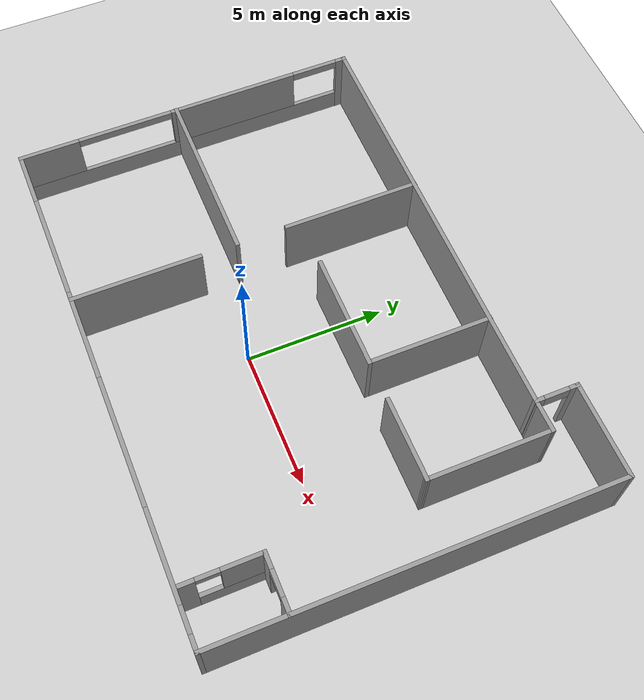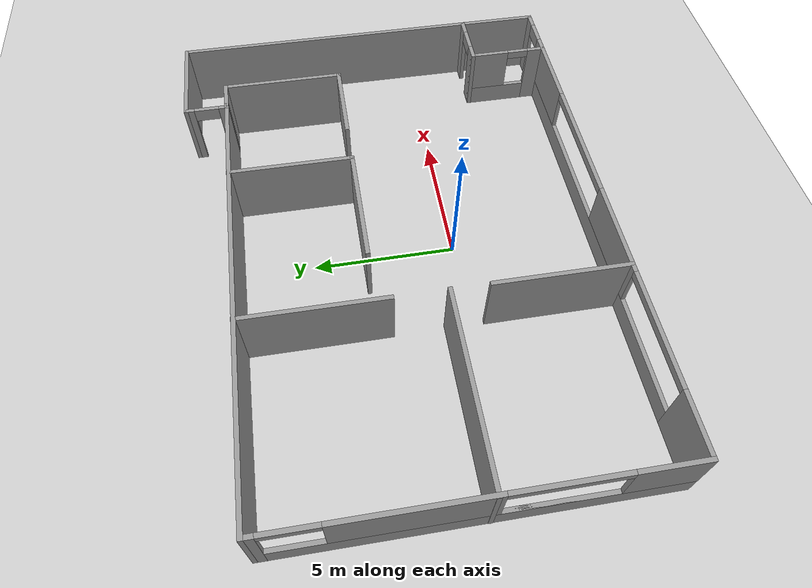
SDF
<sdf version="1.7">
 <world name="default">
  <light name="sun" type="directional">
   <pose>0 0 10 0 -0 0</pose>
   <diffuse>0.8 0.8 0.8 1</diffuse>
   <specular>0.2 0.2 0.2 1</specular>
   <attenuation>
    <range>1000</range>
    <constant>0.9</constant>
    <linear>0.01</linear>
    <quadratic>0.001</quadratic>
   </attenuation>
   <direction>-0.5 0.1 -0.9</direction>
   <spot><inner_angle>0</inner_angle><outer_angle>0</outer_angle><falloff>0</falloff></spot>
  </light>
  <model name="ground_plane">
   <static>1</static>
   <link name="link">
    <collision name="collision">
     <geometry><plane><normal>0 0 1</normal><size>100 100</size></plane></geometry>
     <surface>
      <contact><collide_bitmask>65535</collide_bitmask></contact>
      <friction><ode><mu>100</mu><mu2>50</mu2></ode></friction>
     </surface>
    </collision>
    <visual name="visual">
     <cast_shadows>0</cast_shadows>
     <geometry><plane><normal>0 0 1</normal><size>100 100</size></plane></geometry>
     <material>
      <script><uri>file://media/materials/scripts/gazebo.material</uri><name>Gazebo/Grey</name></script>
     </material>
    </visual>
   </link>
  </model>
  <model name="TrossenRoboticsOfficeBuilding">
   <pose>0 2 0 0 -0 0</pose>
   <link name="Wall_0">
    <pose>-9.41899 -0.749926 0 0 -0 -1.5708</pose>
    <visual name="Wall_0_Visual_0">
     <pose>-6.1662 0 1.25 0 -0 0</pose>
     <geometry><box><size>0.417592 0.15 2.5</size></box></geometry>
     <material>
      <script><uri>file://media/materials/scripts/gazebo.material</uri><name>Gazebo/Grey</name></script>
      <ambient>1 1 1 1</ambient>
     </material>
     <meta><layer>0</layer></meta>
    </visual>
    <collision name="Wall_0_Collision_0">
     <geometry><box><size>0.417592 0.15 2.5</size></box></geometry>
     <pose>-6.1662 0 1.25 0 -0 0</pose>
    </collision>
    <visual name="Wall_0_Visual_1">
     <pose>0.208796 0 0.4 0 -0 0</pose>
     <geometry><box><size>12.3324 0.15 0.8</size></box></geometry>
     <material>
      <script><uri>file://media/materials/scripts/gazebo.material</uri><name>Gazebo/Grey</name></script>
      <ambient>1 1 1 1</ambient>
     </material>
     <meta><layer>0</layer></meta>
    </visual>
    <collision name="Wall_0_Collision_1">
     <geometry><box><size>12.3324 0.15 0.8</size></box></geometry>
     <pose>0.208796 0 0.4 0 -0 0</pose>
    </collision>
    <visual name="Wall_0_Visual_2">
     <pose>-1.80949 0 1.65 0 -0 0</pose>
     <geometry><box><size>4.84784 0.15 1.7</size></box></geometry>
     <material>
      <script><uri>file://media/materials/scripts/gazebo.material</uri><name>Gazebo/Grey</name></script>
      <ambient>1 1 1 1</ambient>
     </material>
     <meta><layer>0</layer></meta>
    </visual>
    <collision name="Wall_0_Collision_2">
     <geometry><box><size>4.84784 0.15 1.7</size></box></geometry>
     <pose>-1.80949 0 1.65 0 -0 0</pose>
    </collision>
    <visual name="Wall_0_Visual_3">
     <pose>5.25622 0 1.65 0 -0 0</pose>
     <geometry><box><size>2.23757 0.15 1.7</size></box></geometry>
     <material>
      <script><uri>file://media/materials/scripts/gazebo.material</uri><name>Gazebo/Grey</name></script>
      <ambient>1 1 1 1</ambient>
     </material>
     <meta><layer>0</layer></meta>
    </visual>
    <collision name="Wall_0_Collision_3">
     <geometry><box><size>2.23757 0.15 1.7</size></box></geometry>
     <pose>5.25622 0 1.65 0 -0 0</pose>
    </collision>
    <visual name="Wall_0_Visual_4">
     <pose>2.37593 0 0.8 0 -0 0</pose>
     <geometry><box><size>3.523 0.15 0</size></box></geometry>
     <material>
      <script><uri>file://media/materials/scripts/gazebo.material</uri><name>Gazebo/Grey</name></script>
      <ambient>1 1 1 1</ambient>
     </material>
     <meta><layer>0</layer></meta>
    </visual>
    <collision name="Wall_0_Collision_4">
     <geometry><box><size>3.523 0.15 0</size></box></geometry>
     <pose>2.37593 0 0.8 0 -0 0</pose>
    </collision>
    <visual name="Wall_0_Visual_5">
     <pose>-5.09541 0 2.35 0 -0 0</pose>
     <geometry><box><size>1.724 0.15 0.3</size></box></geometry>
     <material>
      <script><uri>file://media/materials/scripts/gazebo.material</uri><name>Gazebo/Grey</name></script>
      <ambient>1 1 1 1</ambient>
     </material>
     <meta><layer>0</layer></meta>
    </visual>
    <collision name="Wall_0_Collision_5">
     <geometry><box><size>1.724 0.15 0.3</size></box></geometry>
     <pose>-5.09541 0 2.35 0 -0 0</pose>
    </collision>
    <visual name="Wall_0_Visual_6">
     <pose>2.37593 0 2.35 0 -0 0</pose>
     <geometry><box><size>3.523 0.15 0.3</size></box></geometry>
     <material>
      <script><uri>file://media/materials/scripts/gazebo.material</uri><name>Gazebo/Grey</name></script>
      <ambient>1 1 1 1</ambient>
     </material>
     <meta><layer>0</layer></meta>
    </visual>
    <collision name="Wall_0_Collision_6">
     <geometry><box><size>3.523 0.15 0.3</size></box></geometry>
     <pose>2.37593 0 2.35 0 -0 0</pose>
    </collision>
   </link>
   <link name="Wall_1">
    <pose>0.006011 -7.04993 0 0 -0 0</pose>
    <visual name="Wall_1_Visual_0">
     <pose>-8.45251 0 1.25 0 -0 0</pose>
     <geometry><box><size>2.09499 0.15 2.5</size></box></geometry>
     <material>
      <script><uri>file://media/materials/scripts/gazebo.material</uri><name>Gazebo/Grey</name></script>
      <ambient>1 1 1 1</ambient>
     </material>
     <meta><layer>0</layer></meta>
    </visual>
    <collision name="Wall_1_Collision_0">
     <geometry><box><size>2.09499 0.15 2.5</size></box></geometry>
     <pose>-8.45251 0 1.25 0 -0 0</pose>
    </collision>
    <visual name="Wall_1_Visual_1">
     <pose>9.18754 0 1.25 0 -0 0</pose>
     <geometry><box><size>0.624916 0.15 2.5</size></box></geometry>
     <material>
      <script><uri>file://media/materials/scripts/gazebo.material</uri><name>Gazebo/Grey</name></script>
      <ambient>1 1 1 1</ambient>
     </material>
     <meta><layer>0</layer></meta>
    </visual>
    <collision name="Wall_1_Collision_1">
     <geometry><box><size>0.624916 0.15 2.5</size></box></geometry>
     <pose>9.18754 0 1.25 0 -0 0</pose>
    </collision>
    <visual name="Wall_1_Visual_2">
     <pose>0.285035 0 0.4 0 -0 0</pose>
     <geometry><box><size>15.3801 0.15 0.8</size></box></geometry>
     <material>
      <script><uri>file://media/materials/scripts/gazebo.material</uri><name>Gazebo/Grey</name></script>
      <ambient>1 1 1 1</ambient>
     </material>
     <meta><layer>0</layer></meta>
    </visual>
    <collision name="Wall_1_Collision_2">
     <geometry><box><size>15.3801 0.15 0.8</size></box></geometry>
     <pose>0.285035 0 0.4 0 -0 0</pose>
    </collision>
    <visual name="Wall_1_Visual_3">
     <pose>-1.67035 0 1.65 0 -0 0</pose>
     <geometry><box><size>3.42869 0.15 1.7</size></box></geometry>
     <material>
      <script><uri>file://media/materials/scripts/gazebo.material</uri><name>Gazebo/Grey</name></script>
      <ambient>1 1 1 1</ambient>
     </material>
     <meta><layer>0</layer></meta>
    </visual>
    <collision name="Wall_1_Collision_3">
     <geometry><box><size>3.42869 0.15 1.7</size></box></geometry>
     <pose>-1.67035 0 1.65 0 -0 0</pose>
    </collision>
    <visual name="Wall_1_Visual_4">
     <pose>6.36821 0 1.65 0 -0 0</pose>
     <geometry><box><size>3.21375 0.15 1.7</size></box></geometry>
     <material>
      <script><uri>file://media/materials/scripts/gazebo.material</uri><name>Gazebo/Grey</name></script>
      <ambient>1 1 1 1</ambient>
     </material>
     <meta><layer>0</layer></meta>
    </visual>
    <collision name="Wall_1_Collision_4">
     <geometry><box><size>3.21375 0.15 1.7</size></box></geometry>
     <pose>6.36821 0 1.65 0 -0 0</pose>
    </collision>
    <visual name="Wall_1_Visual_5">
     <pose>8.42508 0 2.25 0 -0 0</pose>
     <geometry><box><size>0.9 0.15 0.5</size></box></geometry>
     <material>
      <script><uri>file://media/materials/scripts/gazebo.material</uri><name>Gazebo/Grey</name></script>
      <ambient>1 1 1 1</ambient>
     </material>
     <meta><layer>0</layer></meta>
    </visual>
    <collision name="Wall_1_Collision_5">
     <geometry><box><size>0.9 0.15 0.5</size></box></geometry>
     <pose>8.42508 0 2.25 0 -0 0</pose>
    </collision>
    <visual name="Wall_1_Visual_6">
     <pose>-5.39486 0 2.35 0 -0 0</pose>
     <geometry><box><size>4.02031 0.15 0.3</size></box></geometry>
     <material>
      <script><uri>file://media/materials/scripts/gazebo.material</uri><name>Gazebo/Grey</name></script>
      <ambient>1 1 1 1</ambient>
     </material>
     <meta><layer>0</layer></meta>
    </visual>
    <collision name="Wall_1_Collision_6">
     <geometry><box><size>4.02031 0.15 0.3</size></box></geometry>
     <pose>-5.39486 0 2.35 0 -0 0</pose>
    </collision>
    <visual name="Wall_1_Visual_7">
     <pose>2.40266 0 2.35 0 -0 0</pose>
     <geometry><box><size>4.71734 0.15 0.3</size></box></geometry>
     <material>
      <script><uri>file://media/materials/scripts/gazebo.material</uri><name>Gazebo/Grey</name></script>
      <ambient>1 1 1 1</ambient>
     </material>
     <meta><layer>0</layer></meta>
    </visual>
    <collision name="Wall_1_Collision_7">
     <geometry><box><size>4.71734 0.15 0.3</size></box></geometry>
     <pose>2.40266 0 2.35 0 -0 0</pose>
    </collision>
   </link>
   <link name="Wall_10">
    <collision name="Wall_10_Collision">
     <geometry><box><size>6.5 0.15 2.5</size></box></geometry>
     <pose>0 0 1.25 0 -0 0</pose>
    </collision>
    <visual name="Wall_10_Visual">
     <pose>0 0 1.25 0 -0 0</pose>
     <geometry><box><size>6.5 0.15 2.5</size></box></geometry>
     <material>
      <script><uri>file://media/materials/scripts/gazebo.material</uri><name>Gazebo/Grey</name></script>
      <ambient>1 1 1 1</ambient>
     </material>
     <meta><layer>0</layer></meta>
    </visual>
    <pose>-6.2561 -1.14107 0 0 -0 0</pose>
   </link>
   <link name="Wall_15">
    <collision name="Wall_15_Collision">
     <geometry><box><size>4.709 0.15 2.5</size></box></geometry>
     <pose>0 0 1.25 0 -0 0</pose>
    </collision>
    <visual name="Wall_15_Visual">
     <pose>0 0 1.25 0 -0 0</pose>
     <geometry><box><size>4.709 0.15 2.5</size></box></geometry>
     <material>
      <script><uri>file://media/materials/scripts/gazebo.material</uri><name>Gazebo/Grey</name></script>
      <ambient>1 1 1 1</ambient>
     </material>
     <meta><layer>0</layer></meta>
    </visual>
    <pose>-3.08091 -4.77053 0 0 -0 -1.5708</pose>
   </link>
   <link name="Wall_18">
    <collision name="Wall_18_Collision">
     <geometry><box><size>5 0.15 2.5</size></box></geometry>
     <pose>0 0 1.25 0 -0 0</pose>
    </collision>
    <visual name="Wall_18_Visual">
     <pose>0 0 1.25 0 -0 0</pose>
     <geometry><box><size>5 0.15 2.5</size></box></geometry>
     <material>
      <script><uri>file://media/materials/scripts/gazebo.material</uri><name>Gazebo/Grey</name></script>
      <ambient>1 1 1 1</ambient>
     </material>
     <meta><layer>0</layer></meta>
    </visual>
    <pose>-3.0811 3.13393 0 0 -0 1.5708</pose>
   </link>
   <link name="Wall_2">
    <collision name="Wall_2_Collision">
     <geometry><box><size>14.25 0.15 2.5</size></box></geometry>
     <pose>0 0 1.25 0 -0 0</pose>
    </collision>
    <visual name="Wall_2_Visual">
     <pose>0 0 1.25 0 -0 0</pose>
     <geometry><box><size>14.25 0.15 2.5</size></box></geometry>
     <material>
      <script><uri>file://media/materials/scripts/gazebo.material</uri><name>Gazebo/Grey</name></script>
      <ambient>1 1 1 1</ambient>
     </material>
     <meta><layer>0</layer></meta>
    </visual>
    <pose>9.43105 2.5e-05 0 0 -0 1.57079</pose>
   </link>
   <link name="Wall_20">
    <collision name="Wall_20_Collision">
     <geometry><box><size>4.5 0.15 2.5</size></box></geometry>
     <pose>0 0 1.25 0 -0 0</pose>
    </collision>
    <visual name="Wall_20_Visual">
     <pose>0 0 1.25 0 -0 0</pose>
     <geometry><box><size>4.5 0.15 2.5</size></box></geometry>
     <material>
      <script><uri>file://media/materials/scripts/gazebo.material</uri><name>Gazebo/Grey</name></script>
      <ambient>1 1 1 1</ambient>
     </material>
     <meta><layer>0</layer></meta>
    </visual>
    <pose>2.81816 3.38641 0 0 -0 -1.5708</pose>
   </link>
   <link name="Wall_21">
    <collision name="Wall_21_Collision">
     <geometry><box><size>4.25 0.15 2.5</size></box></geometry>
     <pose>0 0 1.25 0 -0 0</pose>
    </collision>
    <visual name="Wall_21_Visual">
     <pose>0 0 1.25 0 -0 0</pose>
     <geometry><box><size>4.25 0.15 2.5</size></box></geometry>
     <material>
      <script><uri>file://media/materials/scripts/gazebo.material</uri><name>Gazebo/Grey</name></script>
      <ambient>1 1 1 1</ambient>
     </material>
     <meta><layer>0</layer></meta>
    </visual>
    <pose>0.768162 1.21141 0 0 -0 3.14159</pose>
   </link>
   <link name="Wall_24">
    <collision name="Wall_24_Collision">
     <geometry><box><size>4.5 0.15 2.5</size></box></geometry>
     <pose>0 0 1.25 0 -0 0</pose>
    </collision>
    <visual name="Wall_24_Visual">
     <pose>0 0 1.25 0 -0 0</pose>
     <geometry><box><size>4.5 0.15 2.5</size></box></geometry>
     <material>
      <script><uri>file://media/materials/scripts/gazebo.material</uri><name>Gazebo/Grey</name></script>
      <ambient>1 1 1 1</ambient>
     </material>
     <meta><layer>0</layer></meta>
    </visual>
    <pose>7.16816 3.38641 0 0 -0 1.5708</pose>
   </link>
   <link name="Wall_25">
    <collision name="Wall_25_Collision">
     <geometry><box><size>1.13722 0.15 2.5</size></box></geometry>
     <pose>0 0 1.25 0 -0 0</pose>
    </collision>
    <visual name="Wall_25_Visual">
     <pose>0 0 1.25 0 -0 0</pose>
     <geometry><box><size>1.13722 0.15 2.5</size></box></geometry>
     <material>
      <script><uri>file://media/materials/scripts/gazebo.material</uri><name>Gazebo/Grey</name></script>
      <ambient>1 1 1 1</ambient>
     </material>
     <meta><layer>0</layer></meta>
    </visual>
    <pose>6.67459 5.55574 0 0 -0 -3.13011</pose>
   </link>
   <link name="Wall_27">
    <collision name="Wall_27_Collision">
     <geometry><box><size>3.04868 0.15 2.5</size></box></geometry>
     <pose>0 0 1.25 0 -0 0</pose>
    </collision>
    <visual name="Wall_27_Visual">
     <pose>0 0 1.25 0 -0 0</pose>
     <geometry><box><size>3.04868 0.15 2.5</size></box></geometry>
     <material>
      <script><uri>file://media/materials/scripts/gazebo.material</uri><name>Gazebo/Grey</name></script>
      <ambient>1 1 1 1</ambient>
     </material>
     <meta><layer>0</layer></meta>
    </visual>
    <pose>5.71882 1.21452 0 0 -0 -0.002145</pose>
   </link>
   <link name="Wall_3">
    <collision name="Wall_3_Collision">
     <geometry><box><size>3.5 0.15 2.5</size></box></geometry>
     <pose>0 0 1.25 0 -0 0</pose>
    </collision>
    <visual name="Wall_3_Visual">
     <pose>0 0 1.25 0 -0 0</pose>
     <geometry><box><size>3.5 0.15 2.5</size></box></geometry>
     <material>
      <script><uri>file://media/materials/scripts/gazebo.material</uri><name>Gazebo/Grey</name></script>
      <ambient>1 1 1 1</ambient>
     </material>
     <meta><layer>0</layer></meta>
    </visual>
    <pose>7.7561 7.04997 0 0 -0 3.14159</pose>
   </link>
   <link name="Wall_31">
    <pose>6.0811 6.29948 0 0 -0 -1.5708</pose>
    <visual name="Wall_31_Visual_0">
     <pose>-0.636014 0 1.25 0 -0 0</pose>
     <geometry><box><size>0.378971 0.15 2.5</size></box></geometry>
     <material>
      <script><uri>file://media/materials/scripts/gazebo.material</uri><name>Gazebo/Grey</name></script>
      <ambient>1 1 1 1</ambient>
     </material>
     <meta><layer>0</layer></meta>
    </visual>
    <collision name="Wall_31_Collision_0">
     <geometry><box><size>0.378971 0.15 2.5</size></box></geometry>
     <pose>-0.636014 0 1.25 0 -0 0</pose>
    </collision>
    <visual name="Wall_31_Visual_1">
     <pose>0.639486 0 1.25 0 -0 0</pose>
     <geometry><box><size>0.372029 0.15 2.5</size></box></geometry>
     <material>
      <script><uri>file://media/materials/scripts/gazebo.material</uri><name>Gazebo/Grey</name></script>
      <ambient>1 1 1 1</ambient>
     </material>
     <meta><layer>0</layer></meta>
    </visual>
    <collision name="Wall_31_Collision_1">
     <geometry><box><size>0.372029 0.15 2.5</size></box></geometry>
     <pose>0.639486 0 1.25 0 -0 0</pose>
    </collision>
    <visual name="Wall_31_Visual_2">
     <pose>0.003471 0 2.25 0 -0 0</pose>
     <geometry><box><size>0.9 0.15 0.5</size></box></geometry>
     <material>
      <script><uri>file://media/materials/scripts/gazebo.material</uri><name>Gazebo/Grey</name></script>
      <ambient>1 1 1 1</ambient>
     </material>
     <meta><layer>0</layer></meta>
    </visual>
    <collision name="Wall_31_Collision_2">
     <geometry><box><size>0.9 0.15 0.5</size></box></geometry>
     <pose>0.003471 0 2.25 0 -0 0</pose>
    </collision>
   </link>
   <link name="Wall_33">
    <pose>8.43109 -4.20702 0 0 -0 0</pose>
    <visual name="Wall_33_Visual_0">
     <pose>-0.761405 0 1.25 0 -0 0</pose>
     <geometry><box><size>0.62319 0.15 2.5</size></box></geometry>
     <material>
      <script><uri>file://media/materials/scripts/gazebo.material</uri><name>Gazebo/Grey</name></script>
      <ambient>1 1 1 1</ambient>
     </material>
     <meta><layer>0</layer></meta>
    </visual>
    <collision name="Wall_33_Collision_0">
     <geometry><box><size>0.62319 0.15 2.5</size></box></geometry>
     <pose>-0.761405 0 1.25 0 -0 0</pose>
    </collision>
    <visual name="Wall_33_Visual_1">
     <pose>0.761595 0 1.25 0 -0 0</pose>
     <geometry><box><size>0.62281 0.15 2.5</size></box></geometry>
     <material>
      <script><uri>file://media/materials/scripts/gazebo.material</uri><name>Gazebo/Grey</name></script>
      <ambient>1 1 1 1</ambient>
     </material>
     <meta><layer>0</layer></meta>
    </visual>
    <collision name="Wall_33_Collision_1">
     <geometry><box><size>0.62281 0.15 2.5</size></box></geometry>
     <pose>0.761595 0 1.25 0 -0 0</pose>
    </collision>
    <visual name="Wall_33_Visual_2">
     <pose>0.00019 0 2.25 0 -0 0</pose>
     <geometry><box><size>0.9 0.15 0.5</size></box></geometry>
     <material>
      <script><uri>file://media/materials/scripts/gazebo.material</uri><name>Gazebo/Grey</name></script>
      <ambient>1 1 1 1</ambient>
     </material>
     <meta><layer>0</layer></meta>
    </visual>
    <collision name="Wall_33_Collision_2">
     <geometry><box><size>0.9 0.15 0.5</size></box></geometry>
     <pose>0.00019 0 2.25 0 -0 0</pose>
    </collision>
   </link>
   <link name="Wall_6">
    <collision name="Wall_6_Collision">
     <geometry><box><size>15.75 0.15 2.5</size></box></geometry>
     <pose>0 0 1.25 0 -0 0</pose>
    </collision>
    <visual name="Wall_6_Visual">
     <pose>0 0 1.25 0 -0 0</pose>
     <geometry><box><size>15.75 0.15 2.5</size></box></geometry>
     <material>
      <script><uri>file://media/materials/scripts/gazebo.material</uri><name>Gazebo/Grey</name></script>
      <ambient>1 1 1 1</ambient>
     </material>
     <meta><layer>0</layer></meta>
    </visual>
    <pose>-1.61899 5.55007 0 0 -0 0</pose>
   </link>
   <link name="Wall_8">
    <pose>7.43326 -5.62667 0 0 -0 1.57091</pose>
    <visual name="Wall_8_Visual_0">
     <pose>-1.14327 0 1.25 0 -0 0</pose>
     <geometry><box><size>0.702754 0.15 2.5</size></box></geometry>
     <material>
      <script><uri>file://media/materials/scripts/gazebo.material</uri><name>Gazebo/Grey</name></script>
      <ambient>1 1 1 1</ambient>
     </material>
     <meta><layer>0</layer></meta>
    </visual>
    <collision name="Wall_8_Collision_0">
     <geometry><box><size>0.702754 0.15 2.5</size></box></geometry>
     <pose>-1.14327 0 1.25 0 -0 0</pose>
    </collision>
    <visual name="Wall_8_Visual_1">
     <pose>0.351377 0 0.4 0 -0 0</pose>
     <geometry><box><size>2.28653 0.15 0.8</size></box></geometry>
     <material>
      <script><uri>file://media/materials/scripts/gazebo.material</uri><name>Gazebo/Grey</name></script>
      <ambient>1 1 1 1</ambient>
     </material>
     <meta><layer>0</layer></meta>
    </visual>
    <collision name="Wall_8_Collision_1">
     <geometry><box><size>2.28653 0.15 0.8</size></box></geometry>
     <pose>0.351377 0 0.4 0 -0 0</pose>
    </collision>
    <visual name="Wall_8_Visual_2">
     <pose>0.751377 0 1.65 0 -0 0</pose>
     <geometry><box><size>1.48653 0.15 1.7</size></box></geometry>
     <material>
      <script><uri>file://media/materials/scripts/gazebo.material</uri><name>Gazebo/Grey</name></script>
      <ambient>1 1 1 1</ambient>
     </material>
     <meta><layer>0</layer></meta>
    </visual>
    <collision name="Wall_8_Collision_2">
     <geometry><box><size>1.48653 0.15 1.7</size></box></geometry>
     <pose>0.751377 0 1.65 0 -0 0</pose>
    </collision>
    <visual name="Wall_8_Visual_3">
     <pose>-0.39189 0 2.35 0 -0 0</pose>
     <geometry><box><size>0.8 0.15 0.3</size></box></geometry>
     <material>
      <script><uri>file://media/materials/scripts/gazebo.material</uri><name>Gazebo/Grey</name></script>
      <ambient>1 1 1 1</ambient>
     </material>
     <meta><layer>0</layer></meta>
    </visual>
    <collision name="Wall_8_Collision_3">
     <geometry><box><size>0.8 0.15 0.3</size></box></geometry>
     <pose>-0.39189 0 2.35 0 -0 0</pose>
    </collision>
   </link>
   <static>1</static>
  </model>
  <gravity>0 0 -9.8</gravity>
  <magnetic_field>6e-06 2.3e-05 -4.2e-05</magnetic_field>
  <atmosphere type="adiabatic"/>
  <physics type="ode">
   <max_step_size>0.001</max_step_size>
   <real_time_factor>1</real_time_factor>
   <real_time_update_rate>1000</real_time_update_rate>
  </physics>
  <scene><ambient>0.4 0.4 0.4 1</ambient><background>0.7 0.7 0.7 1</background><shadows>1</shadows></scene>
  <audio><device>default</device></audio>
  <spherical_coordinates>
   <surface_model>EARTH_WGS84</surface_model>
   <latitude_deg>0</latitude_deg>
   <longitude_deg>0</longitude_deg>
   <elevation>0</elevation>
   <heading_deg>0</heading_deg>
  </spherical_coordinates>
  <model name="artefacts_box">
   <link name="link">
    <inertial>
     <mass>1</mass>
     <inertia>
      <ixx>0.166667</ixx>
      <ixy>0</ixy>
      <ixz>0</ixz>
      <iyy>0.166667</iyy>
      <iyz>0</iyz>
      <izz>0.166667</izz>
     </inertia>
    </inertial>
    <visual name="visual">
     <geometry><box><size>0.015 0.015 0.02</size></box></geometry>
     <material>
      <script><name>Gazebo/Grey</name><uri>file://media/materials/scripts/gazebo.material</uri></script>
      <shader type="pixel"><normal_map>__default__</normal_map></shader>
      <ambient>0.3 0.3 0.3 1</ambient>
      <diffuse>0.7 0.7 0.7 1</diffuse>
      <specular>0.01 0.01 0.01 1</specular>
      <emissive>0 0 0 1</emissive>
     </material>
    </visual>
    <collision name="collision">
     <geometry><box><size>0.015 0.015 0.02</size></box></geometry>
     <surface>
      <friction>
       <ode><mu>1</mu><mu2>1</mu2><fdir1>0 0 0</fdir1><slip1>0</slip1><slip2>0</slip2></ode>
       <torsional>
        <coefficient>1</coefficient>
        <patch_radius>0</patch_radius>
        <surface_radius>0</surface_radius>
        <use_patch_radius>1</use_patch_radius>
        <ode><slip>0</slip></ode>
       </torsional>
      </friction>
      <bounce><restitution_coefficient>0</restitution_coefficient><threshold>1e+06</threshold></bounce>
      <contact>
       <collide_without_contact>0</collide_without_contact>
       <collide_without_contact_bitmask>1</collide_without_contact_bitmask>
       <collide_bitmask>1</collide_bitmask>
       <ode>
        <soft_cfm>0</soft_cfm>
        <soft_erp>0.2</soft_erp>
        <kp>1e+13</kp>
        <kd>1</kd>
        <max_vel>0.01</max_vel>
        <min_depth>0</min_depth>
       </ode>
       <bullet>
        <split_impulse>1</split_impulse>
        <split_impulse_penetration_threshold>-0.01</split_impulse_penetration_threshold>
        <soft_cfm>0</soft_cfm>
        <soft_erp>0.2</soft_erp>
        <kp>1e+13</kp>
        <kd>1</kd>
       </bullet>
      </contact>
     </surface>
    </collision>
   </link>
   <static>0</static>
   <pose>0.416925 -3e-06 0.010001 0.000109 6.2e-05 -0</pose>
  </model>
 </world>
</sdf>
